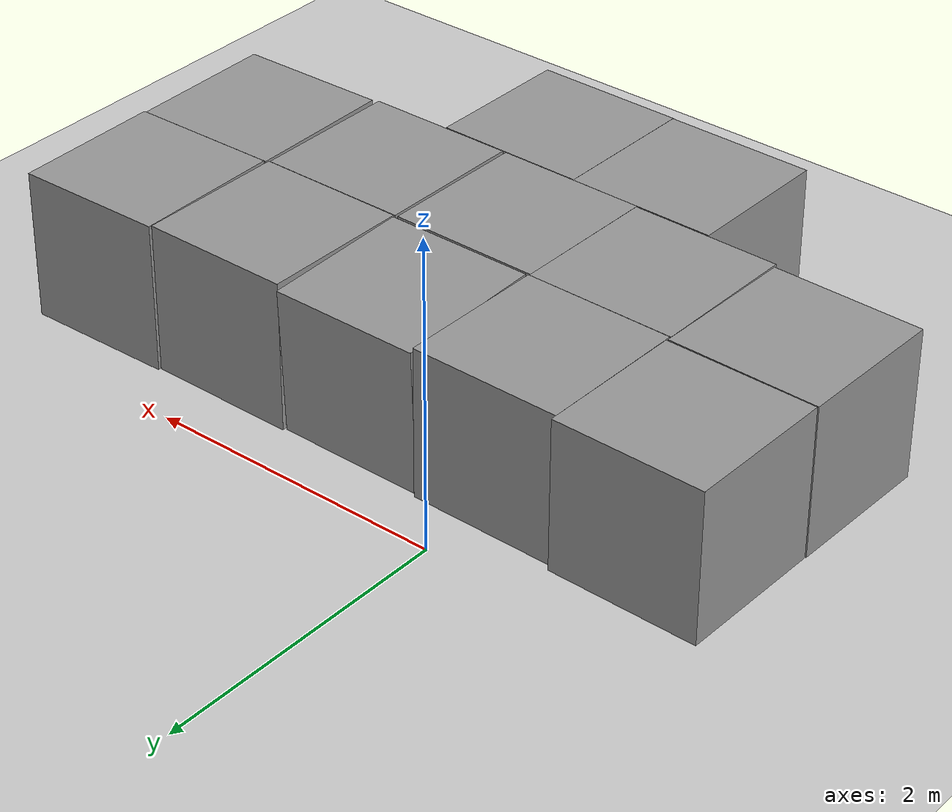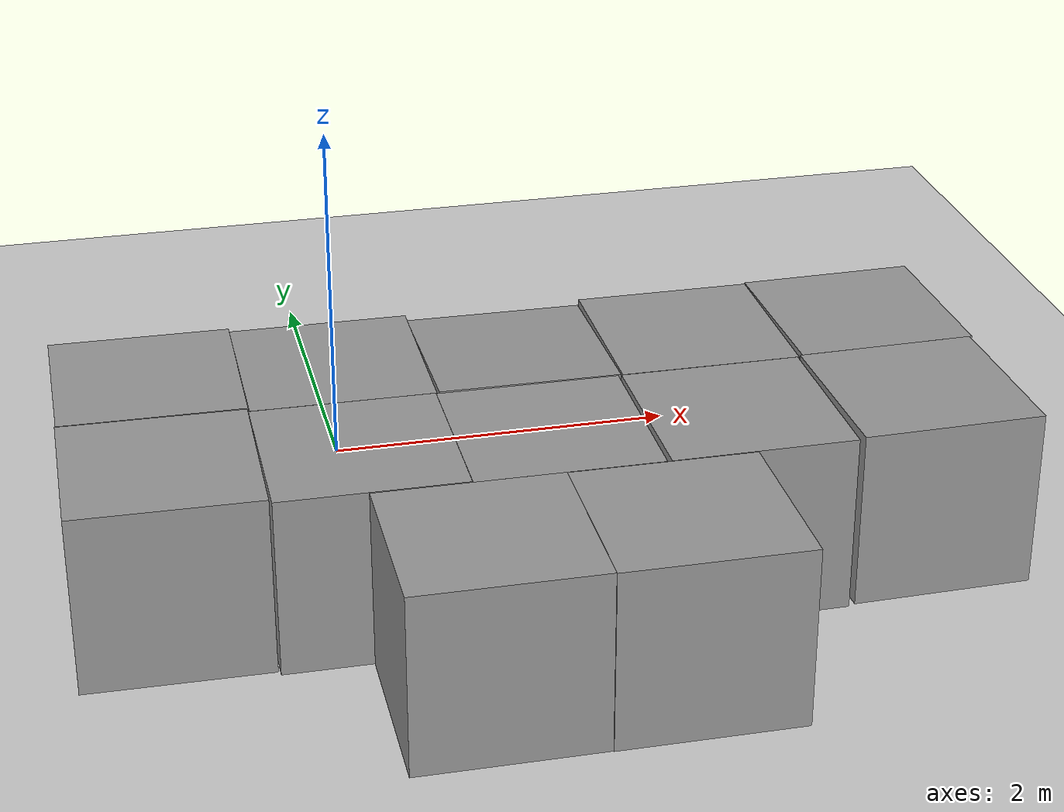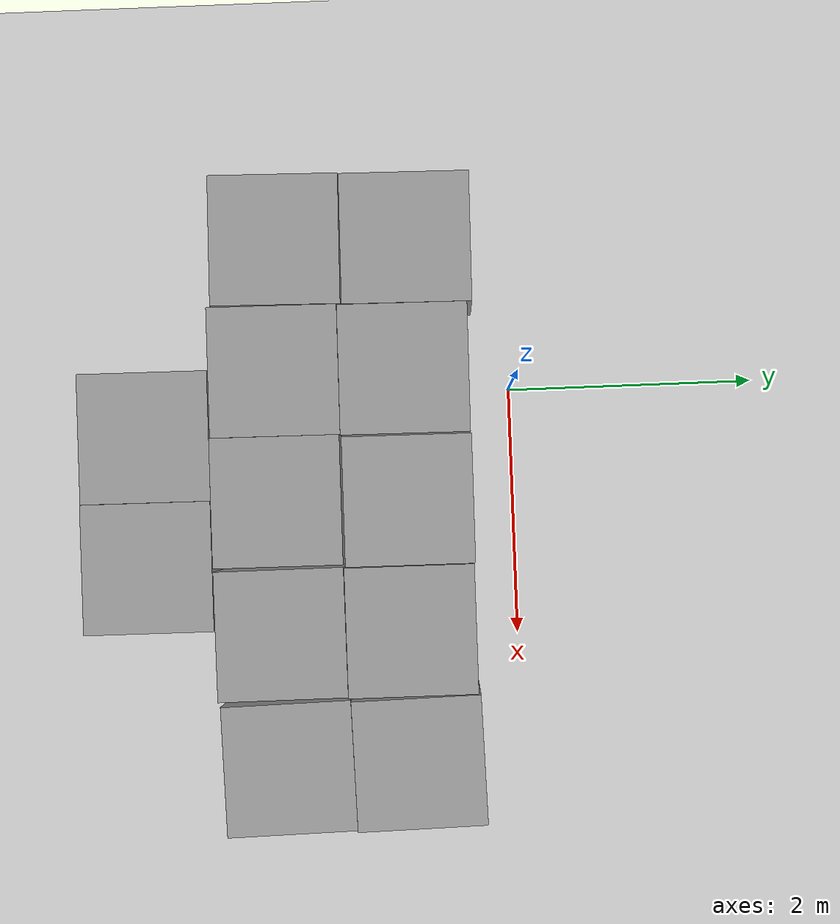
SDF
<sdf version="1.6">
 <world name="default">
  <light name="sun" type="directional">
   <pose>0 0 10 0 -0 0</pose>
   <diffuse>0.8 0.8 0.8 1</diffuse>
   <specular>0.2 0.2 0.2 1</specular>
   <attenuation>
    <range>1000</range>
    <constant>0.9</constant>
    <linear>0.01</linear>
    <quadratic>0.001</quadratic>
   </attenuation>
   <direction>-0.5 0.1 -0.9</direction>
  </light>
  <model name="ground_plane">
   <static>1</static>
   <link name="link">
    <collision name="collision">
     <geometry><plane><normal>0 0 1</normal><size>100 100</size></plane></geometry>
     <surface><friction><ode><mu>100</mu><mu2>50</mu2></ode></friction></surface>
    </collision>
    <visual name="visual">
     <cast_shadows>0</cast_shadows>
     <geometry><plane><normal>0 0 1</normal><size>100 100</size></plane></geometry>
     <material>
      <script><uri>file://media/materials/scripts/gazebo.material</uri><name>Gazebo/Grey</name></script>
     </material>
    </visual>
   </link>
  </model>
  <physics name="default_physics" default="0" type="ode">
   <real_time_update_rate>1000</real_time_update_rate>
   <max_step_size>0.001</max_step_size>
   <real_time_factor>1</real_time_factor>
   <ode>
    <solver>
     <type>quick</type>
     <iters>150</iters>
     <precon_iters>0</precon_iters>
     <sor>1.4</sor>
     <use_dynamic_moi_rescaling>1</use_dynamic_moi_rescaling>
    </solver>
    <constraints>
     <cfm>1e-05</cfm>
     <erp>0.2</erp>
     <contact_max_correcting_vel>2000</contact_max_correcting_vel>
     <contact_surface_layer>0.01</contact_surface_layer>
    </constraints>
   </ode>
  </physics>
  <scene><ambient>0.4 0.4 0.4 1</ambient><background>0.7 0.7 0.7 1</background><shadows>1</shadows></scene>
  <gravity>0 0 -9.8</gravity>
  <magnetic_field>6e-06 2.3e-05 -4.2e-05</magnetic_field>
  <atmosphere type="adiabatic"/>
  <spherical_coordinates>
   <surface_model>EARTH_WGS84</surface_model>
   <latitude_deg>0</latitude_deg>
   <longitude_deg>0</longitude_deg>
   <elevation>0</elevation>
   <heading_deg>0</heading_deg>
  </spherical_coordinates>
  <model name="unit_box">
   <pose>1.88695 -0.84792 0.5 0 0 -0.002759</pose>
   <link name="link">
    <inertial>
     <mass>1</mass>
     <inertia>
      <ixx>0.166667</ixx>
      <ixy>0</ixy>
      <ixz>0</ixz>
      <iyy>0.166667</iyy>
      <iyz>0</iyz>
      <izz>0.166667</izz>
     </inertia>
    </inertial>
    <collision name="collision"><geometry><box><size>1 1 1</size></box></geometry></collision>
    <visual name="visual">
     <geometry><box><size>1 1 1</size></box></geometry>
     <material>
      <script><name>Gazebo/Grey</name><uri>file://media/materials/scripts/gazebo.material</uri></script>
     </material>
    </visual>
   </link>
  </model>
  <model name="unit_box_0">
   <pose>-0.130124 -0.831144 0.5 0 0 -0.009549</pose>
   <link name="link">
    <inertial>
     <mass>1</mass>
     <inertia>
      <ixx>0.166667</ixx>
      <ixy>0</ixy>
      <ixz>0</ixz>
      <iyy>0.166667</iyy>
      <iyz>0</iyz>
      <izz>0.166667</izz>
     </inertia>
    </inertial>
    <collision name="collision"><geometry><box><size>1 1 1</size></box></geometry></collision>
    <visual name="visual">
     <geometry><box><size>1 1 1</size></box></geometry>
     <material>
      <script><name>Gazebo/Grey</name><uri>file://media/materials/scripts/gazebo.material</uri></script>
     </material>
    </visual>
   </link>
  </model>
  <model name="unit_box_1">
   <pose>0.855448 -1.84753 0.49999 0 -0 -0.006763</pose>
   <link name="link">
    <inertial>
     <mass>1</mass>
     <inertia>
      <ixx>0.166667</ixx>
      <ixy>0</ixy>
      <ixz>0</ixz>
      <iyy>0.166667</iyy>
      <iyz>0</iyz>
      <izz>0.166667</izz>
     </inertia>
    </inertial>
    <collision name="collision"><geometry><box><size>1 1 1</size></box></geometry></collision>
    <visual name="visual">
     <geometry><box><size>1 1 1</size></box></geometry>
     <material>
      <script><name>Gazebo/Grey</name><uri>file://media/materials/scripts/gazebo.material</uri></script>
     </material>
    </visual>
   </link>
  </model>
  <model name="unit_box_2">
   <pose>2.90185 -0.823663 0.5 0 -0 0.018199</pose>
   <link name="link">
    <inertial>
     <mass>1</mass>
     <inertia>
      <ixx>0.166667</ixx>
      <ixy>0</ixy>
      <ixz>0</ixz>
      <iyy>0.166667</iyy>
      <iyz>0</iyz>
      <izz>0.166667</izz>
     </inertia>
    </inertial>
    <collision name="collision"><geometry><box><size>1 1 1</size></box></geometry></collision>
    <visual name="visual">
     <geometry><box><size>1 1 1</size></box></geometry>
     <material>
      <script><name>Gazebo/Grey</name><uri>file://media/materials/scripts/gazebo.material</uri></script>
     </material>
    </visual>
   </link>
  </model>
  <model name="unit_box_3">
   <pose>1.87708 -1.85047 0.499996 -7e-06 -0 0.000319</pose>
   <link name="link">
    <inertial>
     <mass>1</mass>
     <inertia>
      <ixx>0.166667</ixx>
      <ixy>0</ixy>
      <ixz>0</ixz>
      <iyy>0.166667</iyy>
      <iyz>0</iyz>
      <izz>0.166667</izz>
     </inertia>
    </inertial>
    <collision name="collision"><geometry><box><size>1 1 1</size></box></geometry></collision>
    <visual name="visual">
     <geometry><box><size>1 1 1</size></box></geometry>
     <material>
      <script><name>Gazebo/Grey</name><uri>file://media/materials/scripts/gazebo.material</uri></script>
     </material>
    </visual>
   </link>
  </model>
  <model name="unit_box_4">
   <pose>-0.145065 -1.83192 0.499942 1e-06 -1e-06 -0.007975</pose>
   <link name="link">
    <inertial>
     <mass>1</mass>
     <inertia>
      <ixx>0.166667</ixx>
      <ixy>0</ixy>
      <ixz>0</ixz>
      <iyy>0.166667</iyy>
      <iyz>0</iyz>
      <izz>0.166667</izz>
     </inertia>
    </inertial>
    <collision name="collision"><geometry><box><size>1 1 1</size></box></geometry></collision>
    <visual name="visual">
     <geometry><box><size>1 1 1</size></box></geometry>
     <material>
      <script><name>Gazebo/Grey</name><uri>file://media/materials/scripts/gazebo.material</uri></script>
     </material>
    </visual>
   </link>
  </model>
  <model name="unit_box_5">
   <pose>-1.13112 -0.781309 0.5 0 -0 -0.012551</pose>
   <link name="link">
    <inertial>
     <mass>1</mass>
     <inertia>
      <ixx>0.166667</ixx>
      <ixy>0</ixy>
      <ixz>0</ixz>
      <iyy>0.166667</iyy>
      <iyz>0</iyz>
      <izz>0.166667</izz>
     </inertia>
    </inertial>
    <collision name="collision"><geometry><box><size>1 1 1</size></box></geometry></collision>
    <visual name="visual">
     <geometry><box><size>1 1 1</size></box></geometry>
     <material>
      <script><name>Gazebo/Grey</name><uri>file://media/materials/scripts/gazebo.material</uri></script>
     </material>
    </visual>
   </link>
  </model>
  <model name="unit_box_6">
   <pose>-1.1511 -1.78878 0.5 0 0 -0.01726</pose>
   <link name="link">
    <inertial>
     <mass>1</mass>
     <inertia>
      <ixx>0.166667</ixx>
      <ixy>0</ixy>
      <ixz>0</ixz>
      <iyy>0.166667</iyy>
      <iyz>0</iyz>
      <izz>0.166667</izz>
     </inertia>
    </inertial>
    <collision name="collision"><geometry><box><size>1 1 1</size></box></geometry></collision>
    <visual name="visual">
     <geometry><box><size>1 1 1</size></box></geometry>
     <material>
      <script><name>Gazebo/Grey</name><uri>file://media/materials/scripts/gazebo.material</uri></script>
     </material>
    </visual>
   </link>
  </model>
  <model name="unit_box_7">
   <pose>2.90605 -1.8241 0.5 0 -0 0.018761</pose>
   <link name="link">
    <inertial>
     <mass>1</mass>
     <inertia>
      <ixx>0.166667</ixx>
      <ixy>0</ixy>
      <ixz>0</ixz>
      <iyy>0.166667</iyy>
      <iyz>0</iyz>
      <izz>0.166667</izz>
     </inertia>
    </inertial>
    <collision name="collision"><geometry><box><size>1 1 1</size></box></geometry></collision>
    <visual name="visual">
     <geometry><box><size>1 1 1</size></box></geometry>
     <material>
      <script><name>Gazebo/Grey</name><uri>file://media/materials/scripts/gazebo.material</uri></script>
     </material>
    </visual>
   </link>
  </model>
  <model name="unit_box_8">
   <pose>0.327567 -2.84397 0.499997 6e-06 -0 -0.007291</pose>
   <link name="link">
    <inertial>
     <mass>1</mass>
     <inertia>
      <ixx>0.166667</ixx>
      <ixy>0</ixy>
      <ixz>0</ixz>
      <iyy>0.166667</iyy>
      <iyz>0</iyz>
      <izz>0.166667</izz>
     </inertia>
    </inertial>
    <collision name="collision"><geometry><box><size>1 1 1</size></box></geometry></collision>
    <visual name="visual">
     <geometry><box><size>1 1 1</size></box></geometry>
     <material>
      <script><name>Gazebo/Grey</name><uri>file://media/materials/scripts/gazebo.material</uri></script>
     </material>
    </visual>
   </link>
  </model>
  <model name="unit_box_9">
   <pose>1.32851 -2.85494 0.5 0 0 -0.006343</pose>
   <link name="link">
    <inertial>
     <mass>1</mass>
     <inertia>
      <ixx>0.166667</ixx>
      <ixy>0</ixy>
      <ixz>0</ixz>
      <iyy>0.166667</iyy>
      <iyz>0</iyz>
      <izz>0.166667</izz>
     </inertia>
    </inertial>
    <collision name="collision"><geometry><box><size>1 1 1</size></box></geometry></collision>
    <visual name="visual">
     <geometry><box><size>1 1 1</size></box></geometry>
     <material>
      <script><name>Gazebo/Grey</name><uri>file://media/materials/scripts/gazebo.material</uri></script>
     </material>
    </visual>
   </link>
  </model>
  <model name="unit_box_10">
   <pose>0.880219 -0.850234 0.481418 -0.036252 0.003701 -0.005913</pose>
   <link name="link">
    <inertial>
     <mass>1</mass>
     <inertia>
      <ixx>0.166667</ixx>
      <ixy>0</ixy>
      <ixz>0</ixz>
      <iyy>0.166667</iyy>
      <iyz>0</iyz>
      <izz>0.166667</izz>
     </inertia>
    </inertial>
    <collision name="collision"><geometry><box><size>1 1 1</size></box></geometry></collision>
    <visual name="visual">
     <geometry><box><size>1 1 1</size></box></geometry>
     <material>
      <script><name>Gazebo/Grey</name><uri>file://media/materials/scripts/gazebo.material</uri></script>
     </material>
    </visual>
   </link>
  </model>
 </world>
</sdf>
